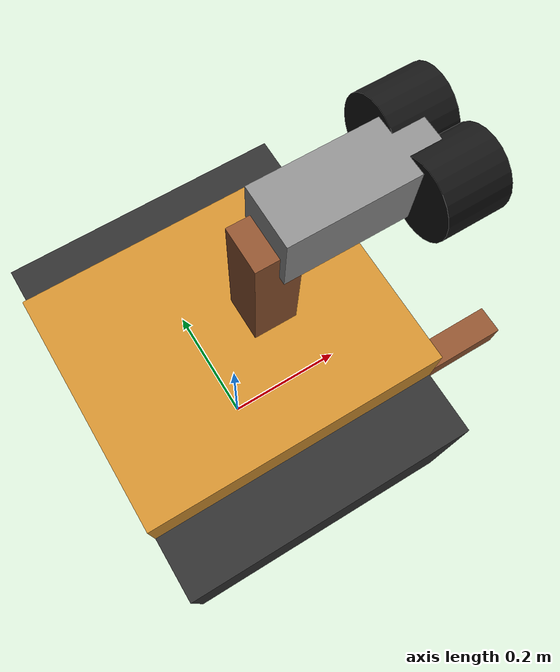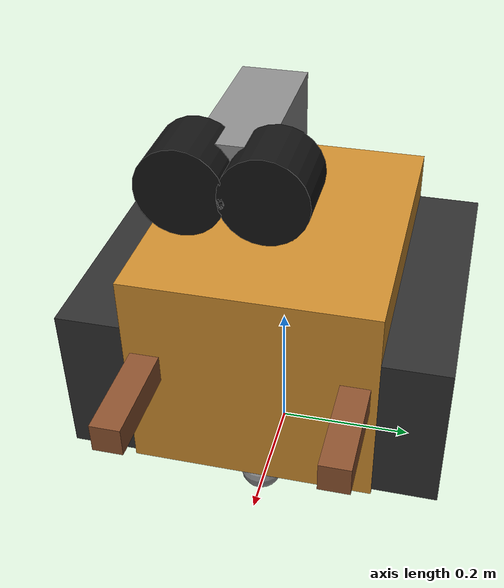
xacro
<?xml version="1.0"?>
<robot name="walle" xmlns:xacro="http://www.ros.org/wiki/xacro">

  <xacro:arg name="name" default="walle"/>
  <xacro:arg name="controllers_file" default=""/>

  <xacro:property name="PI" value="3.1415926535897931"/>

  <xacro:property name="base_height" value="0.23"/>
  <xacro:property name="body_x" value="0.42"/>
  <xacro:property name="body_y" value="0.34"/>
  <xacro:property name="body_z" value="0.30"/>

  <xacro:property name="wheel_radius" value="0.095"/>
  <xacro:property name="wheel_width" value="0.055"/>
  <xacro:property name="wheel_y" value="0.195"/>
  <xacro:property name="wheel_z_rel" value="-0.135"/>
  <xacro:property name="wheel_sep" value="0.39"/>

  <xacro:property name="track_x" value="0.42"/>
  <xacro:property name="track_y" value="0.09"/>
  <xacro:property name="track_z" value="0.22"/>
  <xacro:property name="track_offset_y" value="0.215"/>
  <xacro:property name="track_offset_z" value="-0.03"/>

  <xacro:macro name="box_inertial" params="mass x y z">
    <inertial>
      <origin xyz="0 0 0" rpy="0 0 0"/>
      <mass value="${mass}"/>
      <inertia
        ixx="${(1.0/12.0) * mass * (y*y + z*z)}"
        ixy="0.0"
        ixz="0.0"
        iyy="${(1.0/12.0) * mass * (x*x + z*z)}"
        iyz="0.0"
        izz="${(1.0/12.0) * mass * (x*x + y*y)}"/>
    </inertial>
  </xacro:macro>

  <xacro:macro name="cylinder_inertial" params="mass radius length rpy:='0 0 0'">
    <inertial>
      <origin xyz="0 0 0" rpy="${rpy}"/>
      <mass value="${mass}"/>
      <inertia
        ixx="${(1.0/12.0) * mass * (3.0*radius*radius + length*length)}"
        ixy="0.0"
        ixz="0.0"
        iyy="${(1.0/12.0) * mass * (3.0*radius*radius + length*length)}"
        iyz="0.0"
        izz="${0.5 * mass * radius * radius}"/>
    </inertial>
  </xacro:macro>

  <xacro:macro name="sphere_inertial" params="mass radius">
    <inertial>
      <origin xyz="0 0 0" rpy="0 0 0"/>
      <mass value="${mass}"/>
      <inertia
        ixx="${0.4 * mass * radius * radius}"
        ixy="0.0"
        ixz="0.0"
        iyy="${0.4 * mass * radius * radius}"
        iyz="0.0"
        izz="${0.4 * mass * radius * radius}"/>
    </inertial>
  </xacro:macro>

  <material name="walle_yellow">
    <color rgba="0.80 0.55 0.18 1.0"/>
  </material>
  <material name="walle_dark">
    <color rgba="0.18 0.18 0.18 1.0"/>
  </material>
  <material name="walle_gray">
    <color rgba="0.55 0.55 0.55 1.0"/>
  </material>
  <material name="walle_eye">
    <color rgba="0.08 0.08 0.08 1.0"/>
  </material>
  <material name="walle_rust">
    <color rgba="0.55 0.32 0.18 1.0"/>
  </material>

  <link name="base_footprint"/>

  <link name="base_link">
    <xacro:box_inertial mass="15.0" x="${body_x}" y="${body_y}" z="${body_z}"/>
    <visual>
      <origin xyz="0 0 0" rpy="0 0 0"/>
      <geometry>
        <box size="${body_x} ${body_y} ${body_z}"/>
      </geometry>
      <material name="walle_yellow"/>
    </visual>
    <collision>
      <origin xyz="0 0 0" rpy="0 0 0"/>
      <geometry>
        <box size="${body_x} ${body_y} ${body_z}"/>
      </geometry>
    </collision>
  </link>

  <joint name="base_footprint_joint" type="fixed">
    <parent link="base_footprint"/>
    <child link="base_link"/>
    <origin xyz="0 0 ${base_height}" rpy="0 0 0"/>
  </joint>

  <link name="left_track_cover_link">
    <visual>
      <origin xyz="0 0 0" rpy="0 0 0"/>
      <geometry>
        <box size="${track_x} ${track_y} ${track_z}"/>
      </geometry>
      <material name="walle_dark"/>
    </visual>
  </link>

  <joint name="left_track_cover_joint" type="fixed">
    <parent link="base_link"/>
    <child link="left_track_cover_link"/>
    <origin xyz="0 ${track_offset_y} ${track_offset_z}" rpy="0 0 0"/>
  </joint>

  <link name="right_track_cover_link">
    <visual>
      <origin xyz="0 0 0" rpy="0 0 0"/>
      <geometry>
        <box size="${track_x} ${track_y} ${track_z}"/>
      </geometry>
      <material name="walle_dark"/>
    </visual>
  </link>

  <joint name="right_track_cover_joint" type="fixed">
    <parent link="base_link"/>
    <child link="right_track_cover_link"/>
    <origin xyz="0 -${track_offset_y} ${track_offset_z}" rpy="0 0 0"/>
  </joint>

  <link name="left_wheel_link">
    <xacro:cylinder_inertial mass="1.2" radius="${wheel_radius}" length="${wheel_width}" rpy="${PI/2} 0 0"/>
    <visual>
      <origin xyz="0 0 0" rpy="${PI/2} 0 0"/>
      <geometry>
        <cylinder radius="${wheel_radius}" length="${wheel_width}"/>
      </geometry>
      <material name="walle_dark"/>
    </visual>
    <collision>
      <origin xyz="0 0 0" rpy="${PI/2} 0 0"/>
      <geometry>
        <cylinder radius="${wheel_radius}" length="${wheel_width}"/>
      </geometry>
    </collision>
  </link>

  <joint name="left_wheel_joint" type="continuous">
    <parent link="base_link"/>
    <child link="left_wheel_link"/>
    <origin xyz="0 ${wheel_y} ${wheel_z_rel}" rpy="0 0 0"/>
    <axis xyz="0 1 0"/>
  </joint>

  <link name="right_wheel_link">
    <xacro:cylinder_inertial mass="1.2" radius="${wheel_radius}" length="${wheel_width}" rpy="${PI/2} 0 0"/>
    <visual>
      <origin xyz="0 0 0" rpy="${PI/2} 0 0"/>
      <geometry>
        <cylinder radius="${wheel_radius}" length="${wheel_width}"/>
      </geometry>
      <material name="walle_dark"/>
    </visual>
    <collision>
      <origin xyz="0 0 0" rpy="${PI/2} 0 0"/>
      <geometry>
        <cylinder radius="${wheel_radius}" length="${wheel_width}"/>
      </geometry>
    </collision>
  </link>

  <joint name="right_wheel_joint" type="continuous">
    <parent link="base_link"/>
    <child link="right_wheel_link"/>
    <origin xyz="0 -${wheel_y} ${wheel_z_rel}" rpy="0 0 0"/>
    <axis xyz="0 1 0"/>
  </joint>

  <link name="front_support_link">
    <xacro:sphere_inertial mass="0.10" radius="0.03"/>
    <visual>
      <geometry>
        <sphere radius="0.03"/>
      </geometry>
      <material name="walle_gray"/>
    </visual>
    <collision>
      <geometry>
        <sphere radius="0.03"/>
      </geometry>
    </collision>
  </link>

  <joint name="front_support_joint" type="fixed">
    <parent link="base_link"/>
    <child link="front_support_link"/>
    <origin xyz="0.15 0 ${-base_height + 0.03}" rpy="0 0 0"/>
  </joint>

  <link name="rear_support_link">
    <xacro:sphere_inertial mass="0.10" radius="0.03"/>
    <visual>
      <geometry>
        <sphere radius="0.03"/>
      </geometry>
      <material name="walle_gray"/>
    </visual>
    <collision>
      <geometry>
        <sphere radius="0.03"/>
      </geometry>
    </collision>
  </link>

  <joint name="rear_support_joint" type="fixed">
    <parent link="base_link"/>
    <child link="rear_support_link"/>
    <origin xyz="-0.15 0 ${-base_height + 0.03}" rpy="0 0 0"/>
  </joint>

  <link name="left_arm_link">
    <xacro:box_inertial mass="0.45" x="0.22" y="0.04" z="0.04"/>
    <visual>
      <origin xyz="0.11 0 0" rpy="0 0 0"/>
      <geometry>
        <box size="0.22 0.04 0.04"/>
      </geometry>
      <material name="walle_rust"/>
    </visual>
    <collision>
      <origin xyz="0.11 0 0" rpy="0 0 0"/>
      <geometry>
        <box size="0.22 0.04 0.04"/>
      </geometry>
    </collision>
  </link>

  <joint name="left_arm_joint" type="revolute">
    <parent link="base_link"/>
    <child link="left_arm_link"/>
    <origin xyz="0.13 0.14 0.02" rpy="0 0 0"/>
    <axis xyz="0 1 0"/>
    <limit lower="-1.2" upper="1.0" effort="10.0" velocity="2.0"/>
    <dynamics damping="0.2" friction="0.1"/>
  </joint>

  <link name="right_arm_link">
    <xacro:box_inertial mass="0.45" x="0.22" y="0.04" z="0.04"/>
    <visual>
      <origin xyz="0.11 0 0" rpy="0 0 0"/>
      <geometry>
        <box size="0.22 0.04 0.04"/>
      </geometry>
      <material name="walle_rust"/>
    </visual>
    <collision>
      <origin xyz="0.11 0 0" rpy="0 0 0"/>
      <geometry>
        <box size="0.22 0.04 0.04"/>
      </geometry>
    </collision>
  </link>

  <joint name="right_arm_joint" type="revolute">
    <parent link="base_link"/>
    <child link="right_arm_link"/>
    <origin xyz="0.13 -0.14 0.02" rpy="0 0 0"/>
    <axis xyz="0 1 0"/>
    <limit lower="-1.0" upper="1.2" effort="10.0" velocity="2.0"/>
    <dynamics damping="0.2" friction="0.1"/>
  </joint>

  <link name="head_yaw_link">
    <xacro:box_inertial mass="0.30" x="0.08" y="0.08" z="0.18"/>
    <visual>
      <origin xyz="0 0 0.09" rpy="0 0 0"/>
      <geometry>
        <box size="0.06 0.06 0.18"/>
      </geometry>
      <material name="walle_rust"/>
    </visual>
  </link>

  <joint name="head_yaw_joint" type="revolute">
    <parent link="base_link"/>
    <child link="head_yaw_link"/>
    <origin xyz="0.05 0 0.16" rpy="0 0 0"/>
    <axis xyz="0 0 1"/>
    <limit lower="-1.2" upper="1.2" effort="6.0" velocity="2.0"/>
    <dynamics damping="0.25" friction="0.1"/>
  </joint>

  <link name="head_pitch_link">
    <xacro:box_inertial mass="0.65" x="0.20" y="0.08" z="0.08"/>
    <visual>
      <origin xyz="0.10 0 0" rpy="0 0 0"/>
      <geometry>
        <box size="0.20 0.08 0.08"/>
      </geometry>
      <material name="walle_gray"/>
    </visual>
  </link>

  <joint name="head_pitch_joint" type="revolute">
    <parent link="head_yaw_link"/>
    <child link="head_pitch_link"/>
    <origin xyz="0 0 0.18" rpy="0 0 0"/>
    <axis xyz="0 1 0"/>
    <limit lower="-0.7" upper="0.8" effort="6.0" velocity="2.0"/>
    <dynamics damping="0.25" friction="0.1"/>
  </joint>

  <link name="left_eye_link">
    <xacro:cylinder_inertial mass="0.12" radius="0.05" length="0.08" rpy="0 ${PI/2} 0"/>
    <visual>
      <origin xyz="0.04 0 0" rpy="0 ${PI/2} 0"/>
      <geometry>
        <cylinder radius="0.05" length="0.08"/>
      </geometry>
      <material name="walle_eye"/>
    </visual>
  </link>

  <joint name="left_eye_joint" type="fixed">
    <parent link="head_pitch_link"/>
    <child link="left_eye_link"/>
    <origin xyz="0.16 0.045 0" rpy="0 0 0"/>
  </joint>

  <link name="right_eye_link">
    <xacro:cylinder_inertial mass="0.12" radius="0.05" length="0.08" rpy="0 ${PI/2} 0"/>
    <visual>
      <origin xyz="0.04 0 0" rpy="0 ${PI/2} 0"/>
      <geometry>
        <cylinder radius="0.05" length="0.08"/>
      </geometry>
      <material name="walle_eye"/>
    </visual>
  </link>

  <joint name="right_eye_joint" type="fixed">
    <parent link="head_pitch_link"/>
    <child link="right_eye_link"/>
    <origin xyz="0.16 -0.045 0" rpy="0 0 0"/>
  </joint>

  <link name="camera_link">
    <xacro:box_inertial mass="0.08" x="0.02" y="0.02" z="0.02"/>
  </link>

  <joint name="camera_joint" type="fixed">
    <parent link="head_pitch_link"/>
    <child link="camera_link"/>
    <origin xyz="0.22 0 0" rpy="0 0 0"/>
  </joint>

  <link name="camera_optical_frame"/>

  <joint name="camera_optical_joint" type="fixed">
    <parent link="camera_link"/>
    <child link="camera_optical_frame"/>
    <origin xyz="0 0 0" rpy="-${PI/2} 0 -${PI/2}"/>
  </joint>

  <link name="lidar_link">
    <xacro:cylinder_inertial mass="0.10" radius="0.035" length="0.04"/>
    <visual>
      <geometry>
        <cylinder radius="0.035" length="0.04"/>
      </geometry>
      <material name="walle_gray"/>
    </visual>
  </link>

  <joint name="lidar_joint" type="fixed">
    <parent link="base_link"/>
    <child link="lidar_link"/>
    <origin xyz="0.12 0 -0.05" rpy="0 0 0"/>
  </joint>

  <link name="imu_link">
    <xacro:box_inertial mass="0.05" x="0.02" y="0.02" z="0.02"/>
  </link>

  <joint name="imu_joint" type="fixed">
    <parent link="base_link"/>
    <child link="imu_link"/>
    <origin xyz="0 0 0.04" rpy="0 0 0"/>
  </joint>

  <ros2_control name="GazeboSimSystem" type="system">
    <hardware>
      <plugin>gz_ros2_control/GazeboSimSystem</plugin>
    </hardware>

    <joint name="left_wheel_joint">
      <command_interface name="velocity">
        <param name="min">-20.0</param>
        <param name="max">20.0</param>
      </command_interface>
      <state_interface name="position"/>
      <state_interface name="velocity"/>
    </joint>

    <joint name="right_wheel_joint">
      <command_interface name="velocity">
        <param name="min">-20.0</param>
        <param name="max">20.0</param>
      </command_interface>
      <state_interface name="position"/>
      <state_interface name="velocity"/>
    </joint>

    <joint name="head_yaw_joint">
      <command_interface name="position">
        <param name="min">-1.2</param>
        <param name="max">1.2</param>
      </command_interface>
      <state_interface name="position"/>
      <state_interface name="velocity"/>
    </joint>

    <joint name="head_pitch_joint">
      <command_interface name="position">
        <param name="min">-0.7</param>
        <param name="max">0.8</param>
      </command_interface>
      <state_interface name="position"/>
      <state_interface name="velocity"/>
    </joint>

    <joint name="left_arm_joint">
      <command_interface name="position">
        <param name="min">-1.2</param>
        <param name="max">1.0</param>
      </command_interface>
      <state_interface name="position"/>
      <state_interface name="velocity"/>
    </joint>

    <joint name="right_arm_joint">
      <command_interface name="position">
        <param name="min">-1.0</param>
        <param name="max">1.2</param>
      </command_interface>
      <state_interface name="position"/>
      <state_interface name="velocity"/>
    </joint>
  </ros2_control>

  <gazebo>
    <plugin filename="libgz_ros2_control-system.so" name="gz_ros2_control::GazeboSimROS2ControlPlugin">
      <robot_param>robot_description</robot_param>
      <robot_param_node>robot_state_publisher</robot_param_node>
      <parameters>$(arg controllers_file)</parameters>
    </plugin>
  </gazebo>

  <gazebo reference="left_wheel_link">
    <mu1>1.5</mu1>
    <mu2>1.5</mu2>
    <kp>1000000.0</kp>
    <kd>50.0</kd>
  </gazebo>

  <gazebo reference="right_wheel_link">
    <mu1>1.5</mu1>
    <mu2>1.5</mu2>
    <kp>1000000.0</kp>
    <kd>50.0</kd>
  </gazebo>

  <gazebo reference="front_support_link">
    <mu1>0.01</mu1>
    <mu2>0.01</mu2>
    <kp>100000.0</kp>
    <kd>10.0</kd>
  </gazebo>

  <gazebo reference="rear_support_link">
    <mu1>0.01</mu1>
    <mu2>0.01</mu2>
    <kp>100000.0</kp>
    <kd>10.0</kd>
  </gazebo>

  <gazebo reference="camera_link">
    <sensor name="head_camera" type="camera">
      <always_on>true</always_on>
      <update_rate>15.0</update_rate>
      <visualize>true</visualize>
      <topic>/camera/image_raw</topic>
      <gz_frame_id>camera_link</gz_frame_id>
      <camera>
        <horizontal_fov>1.3962634</horizontal_fov>
        <image>
          <width>640</width>
          <height>480</height>
          <format>R8G8B8</format>
        </image>
        <clip>
          <near>0.05</near>
          <far>30.0</far>
        </clip>
        <lens>
          <type>stereographic</type>
          <scale_to_hfov>true</scale_to_hfov>
        </lens>
      </camera>
    </sensor>
  </gazebo>

  <gazebo reference="lidar_link">
    <sensor name="lidar_sensor" type="gpu_lidar">
      <always_on>true</always_on>
      <update_rate>10.0</update_rate>
      <visualize>true</visualize>
      <topic>/scan</topic>
      <gz_frame_id>lidar_link</gz_frame_id>
      <lidar>
        <scan>
          <horizontal>
            <samples>1080</samples>
            <resolution>1</resolution>
            <min_angle>-3.14159265359</min_angle>
            <max_angle>3.14159265359</max_angle>
          </horizontal>
        </scan>
        <range>
          <min>0.12</min>
          <max>12.0</max>
          <resolution>0.01</resolution>
        </range>
      </lidar>
    </sensor>
  </gazebo>

  <gazebo reference="imu_link">
    <sensor name="imu_sensor" type="imu">
      <always_on>true</always_on>
      <update_rate>100.0</update_rate>
      <topic>/imu</topic>
      <gz_frame_id>imu_link</gz_frame_id>
    </sensor>
  </gazebo>

  <!-- Contact/bumper sensor — last-resort safety net (BUG-4 fix) -->
  <gazebo reference="base_link">
    <sensor name="bumper" type="contact">
      <always_on>true</always_on>
      <update_rate>30.0</update_rate>
      <contact>
        <collision>base_link_collision</collision>
      </contact>
      <plugin filename="gz-sim-contact-system" name="gz::sim::systems::Contact">
        <topic>/bumper</topic>
      </plugin>
    </sensor>
  </gazebo>

</robot>
